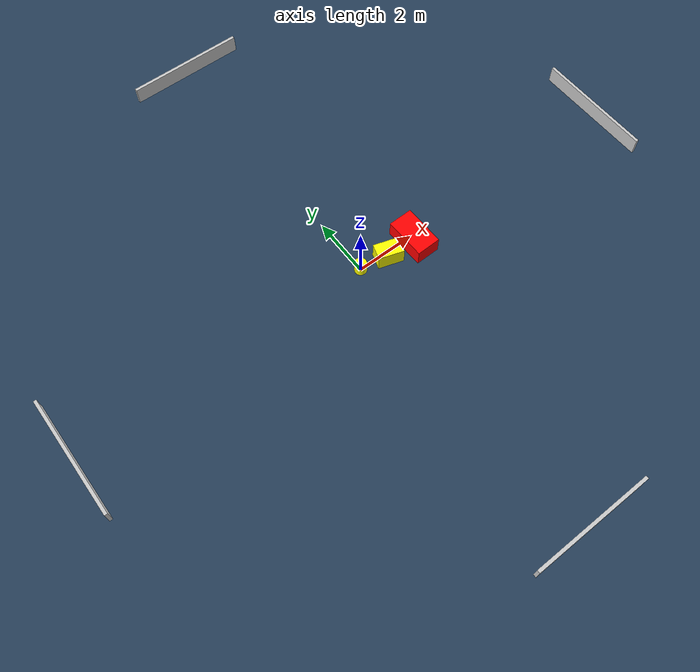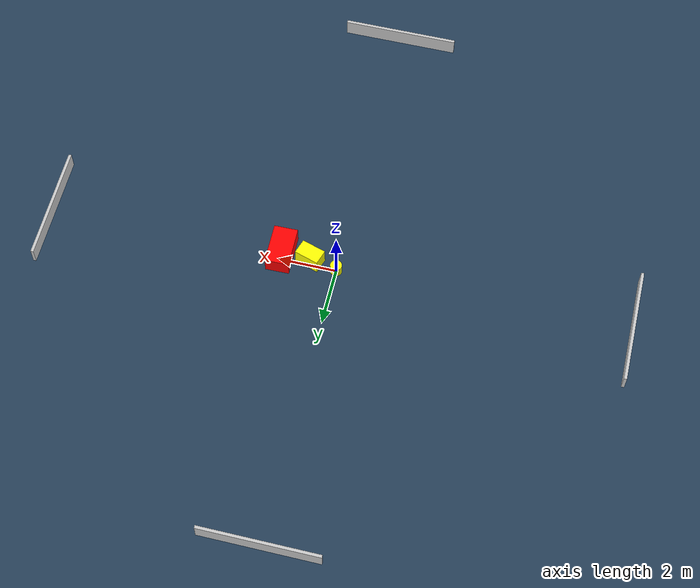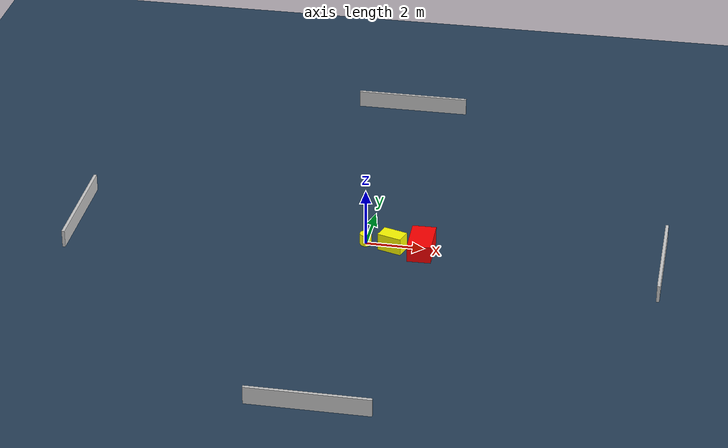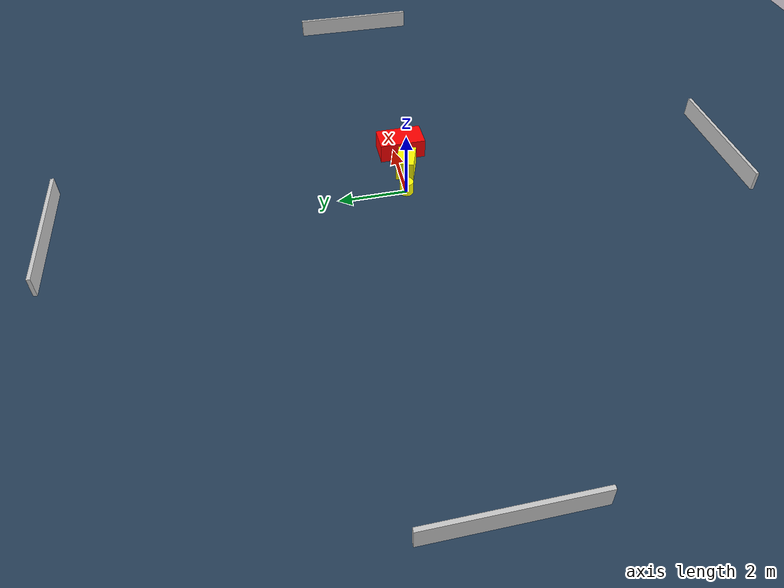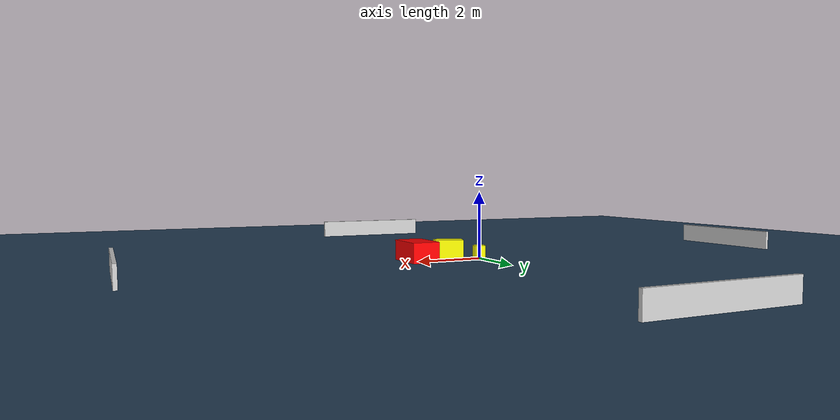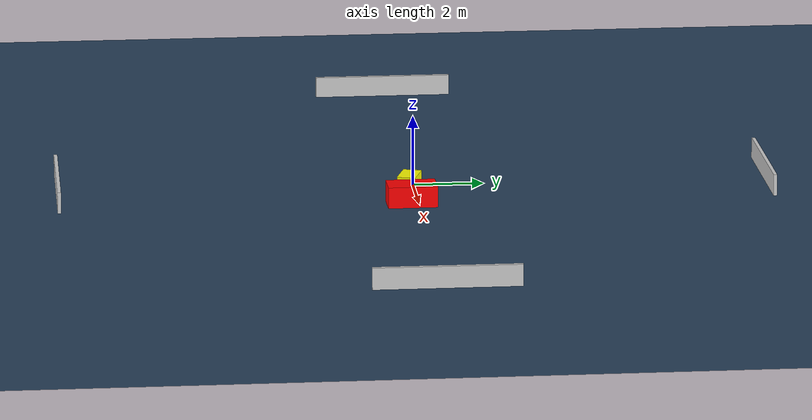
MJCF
<?xml version="1.0" ?>
<mujoco model="generated_environment">
  <option timestep="0.01" integrator="RK4" cone="elliptic"/>
  <default>
    <geom density="1"/>
  </default>
  <asset>
    <texture builtin="gradient" height="3072" name="skybox" rgb1="0.3 0.5 0.7" rgb2="0 0 0" type="skybox" width="512"/>
    <texture builtin="checker" height="300" name="groundplane" rgb1="0.2 0.3 0.4" rgb2="0.1 0.2 0.3" type="2d" width="300"/>
    <material name="groundplane" reflectance="0.2" texrepeat="5 5" texture="groundplane"/>
  </asset>
  <worldbody>
    <light dir="0 0 -1" directional="true" pos="0 0 1.5"/>
    <geom condim="3" friction="0.5 0.005 0.001" material="groundplane" name="floor" pos="0 0 0" size="0 0 0.05" type="plane"/>
    <body name="walls">
      <geom name="wall_1" condim="4" pos="-10.0 0.0 0.3" rgba="0.800000011920929 0.800000011920929 0.800000011920929 1.0" size="0.05 2.0 0.3" type="box"/>
      <geom name="wall_2" condim="4" pos="10.0 0.0 0.3" rgba="0.800000011920929 0.800000011920929 0.800000011920929 1.0" size="0.05 2.0 0.3" type="box"/>
      <geom name="wall_3" condim="4" pos="0.0 -10.0 0.3" rgba="0.800000011920929 0.800000011920929 0.800000011920929 1.0" size="2.0 0.05 0.3" type="box"/>
      <geom name="wall_4" condim="4" pos="0.0 10.0 0.3" rgba="0.800000011920929 0.800000011920929 0.800000011920929 1.0" size="2.0 0.05 0.3" type="box"/>
    </body>
    <body name="robot">
      <joint name="joint_x" type="slide" pos="0 0 0" axis="1 0 0"/>
      <joint name="joint_y" type="slide" pos="0 0 0" axis="0 1 0"/>
      <geom name="robot" type="cylinder" pos="0.0 0.0 0.2" size="0.2 0.2 0.0" mass="5.0" friction="1.0 0.005 0.0001" condim="4" rgba="1.0 1.0 0.0 1.0"/>
    </body>
    <body name="obstacle_1_movable">
      <geom name="obstacle_1_movable" condim="4" pos="0.9452099609701483 -0.189068600781321 0.3" euler="0 0 342.4063190034099" friction="0.0 0.005 0.001" rgba="1.0 1.0 0.0 1.0" size="0.42339658946065983 0.2619935642630491 0.3" type="box" mass="0.1"/>
      <joint type="free"/>
    </body>
    <body name="obstacle_2_static">
      <geom name="obstacle_2_static" condim="4" pos="1.9427746304111961 -0.21393407507778486 0.3" euler="0 0 271.01128267025166" friction="0.0 0.005 0.001" rgba="1.0 0.0 0.0 1.0" size="0.6912448490240295 0.4067800331709692 0.3" type="box"/>
    </body>
  </worldbody>
  <actuator>
    <motor name="actuator_x" joint="joint_x" gear="1" ctrlrange="-1 1"/>
    <motor name="actuator_y" joint="joint_y" gear="1" ctrlrange="-1 1"/>
  </actuator>
</mujoco>
